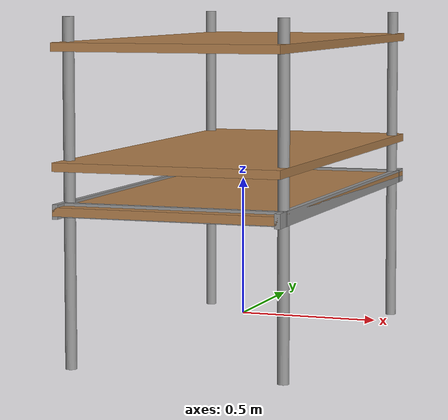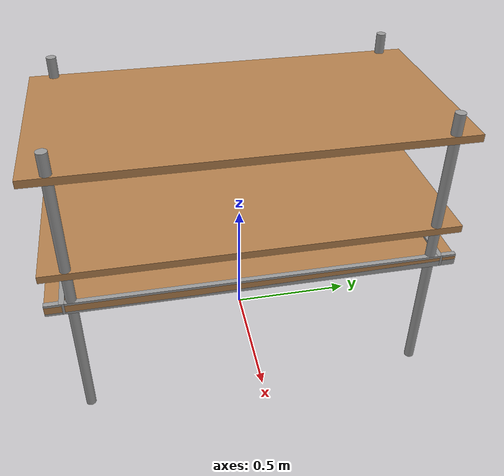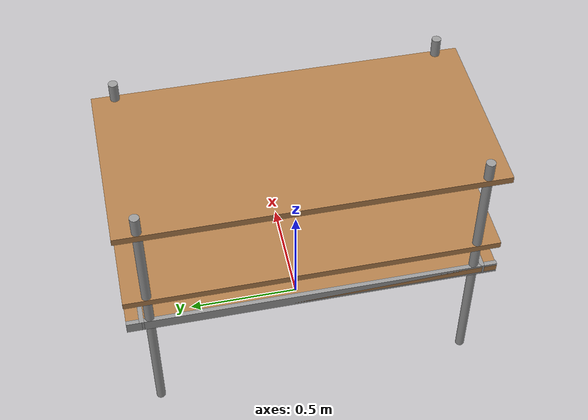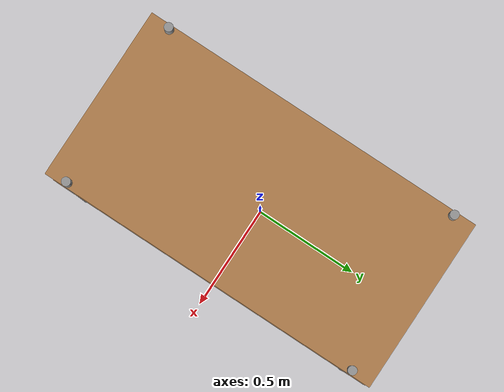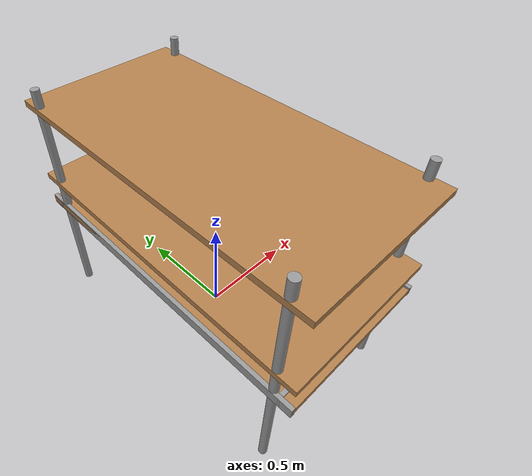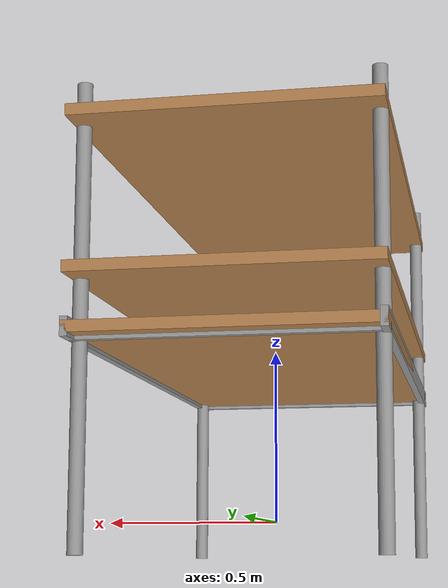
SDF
<?xml version='1.0'?>
<sdf version='1.7'>
  <model name='warehouse_pallet'>
    <link name='warehouse_pallet::link'>
      <pose>0 0 -0 0 -0 1.57</pose>
      <self_collide>0</self_collide>
      <inertial>
        <pose>0 0 0 0 -0 0</pose>
        <inertia>
          <ixx>0.0267042</ixx>
          <ixy>0</ixy>
          <ixz>0</ixz>
          <iyy>0.0937875</iyy>
          <iyz>0</iyz>
          <izz>0.120417</izz>
        </inertia>
        <mass>0.1</mass>
      </inertial>
      <enable_wind>0</enable_wind>
      <kinematic>0</kinematic>
      <gravity>1</gravity>
      <visual name='holding1_visual'>
        <pose>0 0.39 0.45 0 -0 0</pose>
        <geometry>
          <box>
            <size>1.6 0.02 0.05</size>
          </box>
        </geometry>
        <material>
          <script>
            <uri>file://media/materials/scripts/gazebo.material</uri>
            <name>Gazebo/Grey</name>
          </script>
          <shader type='pixel'>
            <normal_map>__default__</normal_map>
          </shader>
          <ambient>0.3 0.3 0.3 1</ambient>
          <diffuse>0.7 0.7 0.7 1</diffuse>
          <specular>0.01 0.01 0.01 1</specular>
          <emissive>0 0 0 1</emissive>
        </material>
        <transparency>0</transparency>
        <cast_shadows>1</cast_shadows>
      </visual>
      <visual name='front_left_leg_visual'>
        <pose>0.70 0.38 0.5 0 -0 0</pose>
        <geometry>
          <cylinder>
            <radius>0.02</radius>
            <length>1.2</length>
          </cylinder>
        </geometry>
        <material>
          <script>
            <uri>file://media/materials/scripts/gazebo.material</uri>
            <name>Gazebo/Grey</name>
          </script>
          <shader type='pixel'>
            <normal_map>__default__</normal_map>
          </shader>
          <ambient>0.3 0.3 0.3 1</ambient>
          <diffuse>0.7 0.7 0.7 1</diffuse>
          <specular>0.01 0.01 0.01 1</specular>
          <emissive>0 0 0 1</emissive>
        </material>
        <transparency>0</transparency>
        <cast_shadows>1</cast_shadows>
      </visual>
      <visual name='front_right_leg_visual'>
        <pose>0.70 -0.38 0.5 0 -0 0</pose>
        <geometry>
          <cylinder>
            <radius>0.02</radius>
            <length>1.2</length>
          </cylinder>
        </geometry>
        <material>
          <script>
            <uri>file://media/materials/scripts/gazebo.material</uri>
            <name>Gazebo/Grey</name>
          </script>
          <shader type='pixel'>
            <normal_map>__default__</normal_map>
          </shader>
          <ambient>0.3 0.3 0.3 1</ambient>
          <diffuse>0.7 0.7 0.7 1</diffuse>
          <specular>0.01 0.01 0.01 1</specular>
          <emissive>0 0 0 1</emissive>
        </material>
        <transparency>0</transparency>
        <cast_shadows>1</cast_shadows>
      </visual>
      <visual name='back_right_leg_visual'>
        <pose>-0.70 -0.38 0.5 0 -0 0</pose>
        <geometry>
          <cylinder>
            <radius>0.02</radius>
            <length>1.2</length>
          </cylinder>
        </geometry>
        <material>
          <script>
            <uri>file://media/materials/scripts/gazebo.material</uri>
            <name>Gazebo/Grey</name>
          </script>
          <shader type='pixel'>
            <normal_map>__default__</normal_map>
          </shader>
          <ambient>0.3 0.3 0.3 1</ambient>
          <diffuse>0.7 0.7 0.7 1</diffuse>
          <specular>0.01 0.01 0.01 1</specular>
          <emissive>0 0 0 1</emissive>
        </material>
        <transparency>0</transparency>
        <cast_shadows>1</cast_shadows>
      </visual>
      <visual name='back_left_leg_visual'>
        <pose>-0.70 0.38 0.5 0 -0 0</pose>
        <geometry>
          <cylinder>
            <radius>0.02</radius>
            <length>1.2</length>
          </cylinder>
        </geometry>
        <material>
          <script>
            <uri>file://media/materials/scripts/gazebo.material</uri>
            <name>Gazebo/Grey</name>
          </script>
          <shader type='pixel'>
            <normal_map>__default__</normal_map>
          </shader>
          <ambient>0.3 0.3 0.3 1</ambient>
          <diffuse>0.7 0.7 0.7 1</diffuse>
          <specular>0.01 0.01 0.01 1</specular>
          <emissive>0 0 0 1</emissive>
        </material>
        <transparency>0</transparency>
        <cast_shadows>1</cast_shadows>
      </visual>
      <visual name='visual1'>
        <pose>0 0 0.45 0 -0 0</pose>
        <geometry>
          <box>
            <size>1.6 0.8 0.03</size>
          </box>
        </geometry>
        <material>
          <script>
            <uri>file://media/materials/scripts/gazebo.material</uri>
            <name>Gazebo/Wood</name>
          </script>
          <shader type='pixel'>
            <normal_map>__default__</normal_map>
          </shader>
          <ambient>1 1 1 1</ambient>
          <diffuse>1 1 1 1</diffuse>
          <specular>0.2 0.2 0.2 1</specular>
          <emissive>0 0 0 1</emissive>
        </material>
        <transparency>0</transparency>
        <cast_shadows>1</cast_shadows>
      </visual>
      <visual name='holding2_visual'>
        <pose>0 -0.39 0.45 0 -0 0</pose>
        <geometry>
          <box>
            <size>1.6 0.02 0.05</size>
          </box>
        </geometry>
        <material>
          <script>
            <uri>file://media/materials/scripts/gazebo.material</uri>
            <name>Gazebo/Grey</name>
          </script>
          <shader type='pixel'>
            <normal_map>__default__</normal_map>
          </shader>
          <ambient>0.3 0.3 0.3 1</ambient>
          <diffuse>0.7 0.7 0.7 1</diffuse>
          <specular>0.01 0.01 0.01 1</specular>
          <emissive>0 0 0 1</emissive>
        </material>
        <transparency>0</transparency>
        <cast_shadows>1</cast_shadows>
      </visual>
      <visual name='holding3_visual'>
        <pose>0.735 0 0.45 0 -0 1.57</pose>
        <geometry>
          <box>
            <size>0.8 0.02 0.05</size>
          </box>
        </geometry>
        <material>
          <script>
            <uri>file://media/materials/scripts/gazebo.material</uri>
            <name>Gazebo/Grey</name>
          </script>
          <shader type='pixel'>
            <normal_map>__default__</normal_map>
          </shader>
          <ambient>0.3 0.3 0.3 1</ambient>
          <diffuse>0.7 0.7 0.7 1</diffuse>
          <specular>0.01 0.01 0.01 1</specular>
          <emissive>0 0 0 1</emissive>
        </material>
        <transparency>0</transparency>
        <cast_shadows>1</cast_shadows>
      </visual>
      <visual name='holding4_visual'>
        <pose>-0.735 0 0.45 0 -0 1.57</pose>
        <geometry>
          <box>
            <size>0.8 0.02 0.05</size>
          </box>
        </geometry>
        <material>
          <script>
            <uri>file://media/materials/scripts/gazebo.material</uri>
            <name>Gazebo/Grey</name>
          </script>
          <shader type='pixel'>
            <normal_map>__default__</normal_map>
          </shader>
          <ambient>0.3 0.3 0.3 1</ambient>
          <diffuse>0.7 0.7 0.7 1</diffuse>
          <specular>0.01 0.01 0.01 1</specular>
          <emissive>0 0 0 1</emissive>
        </material>
        <transparency>0</transparency>
        <cast_shadows>1</cast_shadows>
      </visual>
      <visual name='visual2'>
        <pose>0 0 0.6 0 -0 0</pose>
        <geometry>
          <box>
            <size>1.6 0.8 0.03</size>
          </box>
        </geometry>
        <material>
          <script>
            <uri>file://media/materials/scripts/gazebo.material</uri>
            <name>Gazebo/Wood</name>
          </script>
          <shader type='pixel'>
            <normal_map>__default__</normal_map>
          </shader>
          <ambient>1 1 1 1</ambient>
          <diffuse>1 1 1 1</diffuse>
          <specular>0.2 0.2 0.2 1</specular>
          <emissive>0 0 0 1</emissive>
        </material>
        <transparency>0</transparency>
        <cast_shadows>1</cast_shadows>
      </visual>
      <visual name='visual3'>
        <pose>0 0 1 0 -0 0</pose>
        <geometry>
          <box>
            <size>1.6 0.8 0.03</size>
          </box>
        </geometry>
        <material>
          <script>
            <uri>file://media/materials/scripts/gazebo.material</uri>
            <name>Gazebo/Wood</name>
          </script>
          <shader type='pixel'>
            <normal_map>__default__</normal_map>
          </shader>
          <ambient>1 1 1 1</ambient>
          <diffuse>1 1 1 1</diffuse>
          <specular>0.2 0.2 0.2 1</specular>
          <emissive>0 0 0 1</emissive>
        </material>
        <transparency>0</transparency>
        <cast_shadows>1</cast_shadows>
      </visual>
      <collision name='surface1_collision'>
        <laser_retro>0</laser_retro>
        <max_contacts>10</max_contacts>
        <pose>0 0 0.45 0 -0 0</pose>
        <geometry>
          <box>
            <size>1.6 0.8 0.03</size>
          </box>
        </geometry>
        <surface>
          <friction>
            <ode>
              <mu>20</mu>
              <mu2>20</mu2>
              <fdir1>0 0 0</fdir1>
              <slip1>0</slip1>
              <slip2>0</slip2>
            </ode>
            <torsional>
              <coefficient>1</coefficient>
              <patch_radius>0</patch_radius>
              <surface_radius>0</surface_radius>
              <use_patch_radius>1</use_patch_radius>
              <ode>
                <slip>0</slip>
              </ode>
            </torsional>
          </friction>
          <bounce>
            <restitution_coefficient>0</restitution_coefficient>
            <threshold>1e+06</threshold>
          </bounce>
          <contact>
            <collide_without_contact>0</collide_without_contact>
            <collide_without_contact_bitmask>1</collide_without_contact_bitmask>
            <collide_bitmask>1</collide_bitmask>
            <ode>
              <soft_cfm>0</soft_cfm>
              <soft_erp>0.2</soft_erp>
              <kp>1e+13</kp>
              <kd>1</kd>
              <max_vel>0.01</max_vel>
              <min_depth>0</min_depth>
            </ode>
            <bullet>
              <split_impulse>1</split_impulse>
              <split_impulse_penetration_threshold>-0.01</split_impulse_penetration_threshold>
              <soft_cfm>0</soft_cfm>
              <soft_erp>0.2</soft_erp>
              <kp>1e+13</kp>
              <kd>1</kd>
            </bullet>
          </contact>
        </surface>
      </collision>
      <collision name='holding1_collision'>
        <laser_retro>0</laser_retro>
        <max_contacts>10</max_contacts>
        <pose>0 0.39 0.45 0 -0 0</pose>
        <geometry>
          <box>
            <size>1.6 0.02 0.05</size>
          </box>
        </geometry>
        <surface>
          <friction>
            <ode>
              <mu>1e+09</mu>
              <mu2>1e+09</mu2>
              <fdir1>0 0 0</fdir1>
              <slip1>0</slip1>
              <slip2>0</slip2>
            </ode>
            <torsional>
              <coefficient>1</coefficient>
              <patch_radius>0</patch_radius>
              <surface_radius>0</surface_radius>
              <use_patch_radius>1</use_patch_radius>
              <ode>
                <slip>0</slip>
              </ode>
            </torsional>
          </friction>
          <bounce>
            <restitution_coefficient>0</restitution_coefficient>
            <threshold>1e+06</threshold>
          </bounce>
          <contact>
            <collide_without_contact>0</collide_without_contact>
            <collide_without_contact_bitmask>1</collide_without_contact_bitmask>
            <collide_bitmask>1</collide_bitmask>
            <ode>
              <soft_cfm>0</soft_cfm>
              <soft_erp>0.2</soft_erp>
              <kp>1e+13</kp>
              <kd>1</kd>
              <max_vel>0.01</max_vel>
              <min_depth>0</min_depth>
            </ode>
            <bullet>
              <split_impulse>1</split_impulse>
              <split_impulse_penetration_threshold>-0.01</split_impulse_penetration_threshold>
              <soft_cfm>0</soft_cfm>
              <soft_erp>0.2</soft_erp>
              <kp>1e+13</kp>
              <kd>1</kd>
            </bullet>
          </contact>
        </surface>
      </collision>
      <collision name='holding2_collision'>
        <laser_retro>0</laser_retro>
        <max_contacts>10</max_contacts>
        <pose>0 -0.39 0.45 0 -0 0</pose>
        <geometry>
          <box>
            <size>1.6 0.02 0.05</size>
          </box>
        </geometry>
        <surface>
          <friction>
            <ode>
              <mu>1e+09</mu>
              <mu2>1e+09</mu2>
              <fdir1>0 0 0</fdir1>
              <slip1>0</slip1>
              <slip2>0</slip2>
            </ode>
            <torsional>
              <coefficient>1</coefficient>
              <patch_radius>0</patch_radius>
              <surface_radius>0</surface_radius>
              <use_patch_radius>1</use_patch_radius>
              <ode>
                <slip>0</slip>
              </ode>
            </torsional>
          </friction>
          <bounce>
            <restitution_coefficient>0</restitution_coefficient>
            <threshold>1e+06</threshold>
          </bounce>
          <contact>
            <collide_without_contact>0</collide_without_contact>
            <collide_without_contact_bitmask>1</collide_without_contact_bitmask>
            <collide_bitmask>1</collide_bitmask>
            <ode>
              <soft_cfm>0</soft_cfm>
              <soft_erp>0.2</soft_erp>
              <kp>1e+13</kp>
              <kd>1</kd>
              <max_vel>0.01</max_vel>
              <min_depth>0</min_depth>
            </ode>
            <bullet>
              <split_impulse>1</split_impulse>
              <split_impulse_penetration_threshold>-0.01</split_impulse_penetration_threshold>
              <soft_cfm>0</soft_cfm>
              <soft_erp>0.2</soft_erp>
              <kp>1e+13</kp>
              <kd>1</kd>
            </bullet>
          </contact>
        </surface>
      </collision>
      <collision name='holding3_collision'>
        <laser_retro>0</laser_retro>
        <max_contacts>10</max_contacts>
        <pose>0.735 0 0.45 0 -0 1.57</pose>
        <geometry>
          <box>
            <size>0.8 0.02 0.05</size>
          </box>
        </geometry>
        <surface>
          <friction>
            <ode>
              <mu>1e+09</mu>
              <mu2>1e+09</mu2>
              <fdir1>0 0 0</fdir1>
              <slip1>0</slip1>
              <slip2>0</slip2>
            </ode>
            <torsional>
              <coefficient>1</coefficient>
              <patch_radius>0</patch_radius>
              <surface_radius>0</surface_radius>
              <use_patch_radius>1</use_patch_radius>
              <ode>
                <slip>0</slip>
              </ode>
            </torsional>
          </friction>
          <bounce>
            <restitution_coefficient>0</restitution_coefficient>
            <threshold>1e+06</threshold>
          </bounce>
          <contact>
            <collide_without_contact>0</collide_without_contact>
            <collide_without_contact_bitmask>1</collide_without_contact_bitmask>
            <collide_bitmask>1</collide_bitmask>
            <ode>
              <soft_cfm>0</soft_cfm>
              <soft_erp>0.2</soft_erp>
              <kp>1e+13</kp>
              <kd>1</kd>
              <max_vel>0.01</max_vel>
              <min_depth>0</min_depth>
            </ode>
            <bullet>
              <split_impulse>1</split_impulse>
              <split_impulse_penetration_threshold>-0.01</split_impulse_penetration_threshold>
              <soft_cfm>0</soft_cfm>
              <soft_erp>0.2</soft_erp>
              <kp>1e+13</kp>
              <kd>1</kd>
            </bullet>
          </contact>
        </surface>
      </collision>
      <collision name='holding4_collision'>
        <laser_retro>0</laser_retro>
        <max_contacts>10</max_contacts>
        <pose>-0.735 0 0.45 0 -0 1.57</pose>
        <geometry>
          <box>
            <size>0.8 0.02 0.05</size>
          </box>
        </geometry>
        <surface>
          <friction>
            <ode>
              <mu>1e+09</mu>
              <mu2>1e+09</mu2>
              <fdir1>0 0 0</fdir1>
              <slip1>0</slip1>
              <slip2>0</slip2>
            </ode>
            <torsional>
              <coefficient>1</coefficient>
              <patch_radius>0</patch_radius>
              <surface_radius>0</surface_radius>
              <use_patch_radius>1</use_patch_radius>
              <ode>
                <slip>0</slip>
              </ode>
            </torsional>
          </friction>
          <bounce>
            <restitution_coefficient>0</restitution_coefficient>
            <threshold>1e+06</threshold>
          </bounce>
          <contact>
            <collide_without_contact>0</collide_without_contact>
            <collide_without_contact_bitmask>1</collide_without_contact_bitmask>
            <collide_bitmask>1</collide_bitmask>
            <ode>
              <soft_cfm>0</soft_cfm>
              <soft_erp>0.2</soft_erp>
              <kp>1e+13</kp>
              <kd>1</kd>
              <max_vel>0.01</max_vel>
              <min_depth>0</min_depth>
            </ode>
            <bullet>
              <split_impulse>1</split_impulse>
              <split_impulse_penetration_threshold>-0.01</split_impulse_penetration_threshold>
              <soft_cfm>0</soft_cfm>
              <soft_erp>0.2</soft_erp>
              <kp>1e+13</kp>
              <kd>1</kd>
            </bullet>
          </contact>
        </surface>
      </collision>
      <collision name='surface3_collision'>
        <laser_retro>0</laser_retro>
        <max_contacts>10</max_contacts>
        <pose>0 0 1 0 -0 0</pose>
        <geometry>
          <box>
            <size>1.6 0.8 0.03</size>
          </box>
        </geometry>
        <surface>
          <friction>
            <ode>
              <mu>2.5</mu>
              <mu2>2.5</mu2>
              <fdir1>0 0 0</fdir1>
              <slip1>0</slip1>
              <slip2>0</slip2>
            </ode>
            <torsional>
              <coefficient>1</coefficient>
              <patch_radius>0</patch_radius>
              <surface_radius>0</surface_radius>
              <use_patch_radius>1</use_patch_radius>
              <ode>
                <slip>0</slip>
              </ode>
            </torsional>
          </friction>
          <bounce>
            <restitution_coefficient>0</restitution_coefficient>
            <threshold>1e+06</threshold>
          </bounce>
          <contact>
            <collide_without_contact>0</collide_without_contact>
            <collide_without_contact_bitmask>1</collide_without_contact_bitmask>
            <collide_bitmask>1</collide_bitmask>
            <ode>
              <soft_cfm>0</soft_cfm>
              <soft_erp>0.2</soft_erp>
              <kp>1e+13</kp>
              <kd>1</kd>
              <max_vel>0.01</max_vel>
              <min_depth>0</min_depth>
            </ode>
            <bullet>
              <split_impulse>1</split_impulse>
              <split_impulse_penetration_threshold>-0.01</split_impulse_penetration_threshold>
              <soft_cfm>0</soft_cfm>
              <soft_erp>0.2</soft_erp>
              <kp>1e+13</kp>
              <kd>1</kd>
            </bullet>
          </contact>
        </surface>
      </collision>
      <collision name='surface2_collision'>
        <laser_retro>0</laser_retro>
        <max_contacts>10</max_contacts>
        <pose>0 0 0.6 0 -0 0</pose>
        <geometry>
          <box>
            <size>1.6 0.8 0.03</size>
          </box>
        </geometry>
        <surface>
          <friction>
            <ode>
              <mu>2.5</mu>
              <mu2>2.5</mu2>
              <fdir1>0 0 0</fdir1>
              <slip1>0</slip1>
              <slip2>0</slip2>
            </ode>
            <torsional>
              <coefficient>1</coefficient>
              <patch_radius>0</patch_radius>
              <surface_radius>0</surface_radius>
              <use_patch_radius>1</use_patch_radius>
              <ode>
                <slip>0</slip>
              </ode>
            </torsional>
          </friction>
          <bounce>
            <restitution_coefficient>0</restitution_coefficient>
            <threshold>1e+06</threshold>
          </bounce>
          <contact>
            <collide_without_contact>0</collide_without_contact>
            <collide_without_contact_bitmask>1</collide_without_contact_bitmask>
            <collide_bitmask>1</collide_bitmask>
            <ode>
              <soft_cfm>0</soft_cfm>
              <soft_erp>0.2</soft_erp>
              <kp>1e+13</kp>
              <kd>1</kd>
              <max_vel>0.01</max_vel>
              <min_depth>0</min_depth>
            </ode>
            <bullet>
              <split_impulse>1</split_impulse>
              <split_impulse_penetration_threshold>-0.01</split_impulse_penetration_threshold>
              <soft_cfm>0</soft_cfm>
              <soft_erp>0.2</soft_erp>
              <kp>1e+13</kp>
              <kd>1</kd>
            </bullet>
          </contact>
        </surface>
      </collision>
      <collision name='front_right_leg_collision'>
        <laser_retro>0</laser_retro>
        <max_contacts>10</max_contacts>
        <pose>0.70 -0.38 0.5 0 -0 0</pose>
        <geometry>
          <cylinder>
            <radius>0.02</radius>
            <length>1</length>
          </cylinder>
        </geometry>
        <surface>
          <friction>
            <ode>
              <mu>0.1</mu>
              <mu2>0.1</mu2>
              <fdir1>0 0 0</fdir1>
              <slip1>0</slip1>
              <slip2>0</slip2>
            </ode>
            <torsional>
              <coefficient>1</coefficient>
              <patch_radius>0</patch_radius>
              <surface_radius>0</surface_radius>
              <use_patch_radius>1</use_patch_radius>
              <ode>
                <slip>0</slip>
              </ode>
            </torsional>
          </friction>
          <bounce>
            <restitution_coefficient>0</restitution_coefficient>
            <threshold>1e+06</threshold>
          </bounce>
          <contact>
            <collide_without_contact>0</collide_without_contact>
            <collide_without_contact_bitmask>1</collide_without_contact_bitmask>
            <collide_bitmask>1</collide_bitmask>
            <ode>
              <soft_cfm>0</soft_cfm>
              <soft_erp>0.2</soft_erp>
              <kp>1e+13</kp>
              <kd>1</kd>
              <max_vel>0.01</max_vel>
              <min_depth>0</min_depth>
            </ode>
            <bullet>
              <split_impulse>1</split_impulse>
              <split_impulse_penetration_threshold>-0.01</split_impulse_penetration_threshold>
              <soft_cfm>0</soft_cfm>
              <soft_erp>0.2</soft_erp>
              <kp>1e+13</kp>
              <kd>1</kd>
            </bullet>
          </contact>
        </surface>
      </collision>
      <collision name='back_right_leg_collision'>
        <laser_retro>0</laser_retro>
        <max_contacts>10</max_contacts>
        <pose>-0.70 -0.38 0.5 0 -0 0</pose>
        <geometry>
          <cylinder>
            <radius>0.02</radius>
            <length>1.2</length>
          </cylinder>
        </geometry>
        <surface>
          <friction>
            <ode>
              <mu>0.1</mu>
              <mu2>0.1</mu2>
              <fdir1>0 0 0</fdir1>
              <slip1>0</slip1>
              <slip2>0</slip2>
            </ode>
            <torsional>
              <coefficient>1</coefficient>
              <patch_radius>0</patch_radius>
              <surface_radius>0</surface_radius>
              <use_patch_radius>1</use_patch_radius>
              <ode>
                <slip>0</slip>
              </ode>
            </torsional>
          </friction>
          <bounce>
            <restitution_coefficient>0</restitution_coefficient>
            <threshold>1e+06</threshold>
          </bounce>
          <contact>
            <collide_without_contact>0</collide_without_contact>
            <collide_without_contact_bitmask>1</collide_without_contact_bitmask>
            <collide_bitmask>1</collide_bitmask>
            <ode>
              <soft_cfm>0</soft_cfm>
              <soft_erp>0.2</soft_erp>
              <kp>1e+13</kp>
              <kd>1</kd>
              <max_vel>0.01</max_vel>
              <min_depth>0</min_depth>
            </ode>
            <bullet>
              <split_impulse>1</split_impulse>
              <split_impulse_penetration_threshold>-0.01</split_impulse_penetration_threshold>
              <soft_cfm>0</soft_cfm>
              <soft_erp>0.2</soft_erp>
              <kp>1e+13</kp>
              <kd>1</kd>
            </bullet>
          </contact>
        </surface>
      </collision>
      <collision name='front_left_leg_collision'>
        <laser_retro>0</laser_retro>
        <max_contacts>10</max_contacts>
        <pose>0.70 0.38 0.5 0 -0 0</pose>
        <geometry>
          <cylinder>
            <radius>0.02</radius>
            <length>1.2</length>
          </cylinder>
        </geometry>
        <surface>
          <friction>
            <ode>
              <mu>0.1</mu>
              <mu2>0.1</mu2>
              <fdir1>0 0 0</fdir1>
              <slip1>0</slip1>
              <slip2>0</slip2>
            </ode>
            <torsional>
              <coefficient>1</coefficient>
              <patch_radius>0</patch_radius>
              <surface_radius>0</surface_radius>
              <use_patch_radius>1</use_patch_radius>
              <ode>
                <slip>0</slip>
              </ode>
            </torsional>
          </friction>
          <bounce>
            <restitution_coefficient>0</restitution_coefficient>
            <threshold>1e+06</threshold>
          </bounce>
          <contact>
            <collide_without_contact>0</collide_without_contact>
            <collide_without_contact_bitmask>1</collide_without_contact_bitmask>
            <collide_bitmask>1</collide_bitmask>
            <ode>
              <soft_cfm>0</soft_cfm>
              <soft_erp>0.2</soft_erp>
              <kp>1e+13</kp>
              <kd>1</kd>
              <max_vel>0.01</max_vel>
              <min_depth>0</min_depth>
            </ode>
            <bullet>
              <split_impulse>1</split_impulse>
              <split_impulse_penetration_threshold>-0.01</split_impulse_penetration_threshold>
              <soft_cfm>0</soft_cfm>
              <soft_erp>0.2</soft_erp>
              <kp>1e+13</kp>
              <kd>1</kd>
            </bullet>
          </contact>
        </surface>
      </collision>
      <collision name='back_left_leg_collision'>
        <laser_retro>0</laser_retro>
        <max_contacts>10</max_contacts>
        <pose>-0.70 0.38 0.5 0 -0 0</pose>
        <geometry>
          <cylinder>
            <radius>0.02</radius>
            <length>1.2</length>
          </cylinder>
        </geometry>
        <surface>
          <friction>
            <ode>
              <mu>0.1</mu>
              <mu2>0.1</mu2>
              <fdir1>0 0 0</fdir1>
              <slip1>0</slip1>
              <slip2>0</slip2>
            </ode>
            <torsional>
              <coefficient>1</coefficient>
              <patch_radius>0</patch_radius>
              <surface_radius>0</surface_radius>
              <use_patch_radius>1</use_patch_radius>
              <ode>
                <slip>0</slip>
              </ode>
            </torsional>
          </friction>
          <bounce>
            <restitution_coefficient>0</restitution_coefficient>
            <threshold>1e+06</threshold>
          </bounce>
          <contact>
            <collide_without_contact>0</collide_without_contact>
            <collide_without_contact_bitmask>1</collide_without_contact_bitmask>
            <collide_bitmask>1</collide_bitmask>
            <ode>
              <soft_cfm>0</soft_cfm>
              <soft_erp>0.2</soft_erp>
              <kp>1e+13</kp>
              <kd>1</kd>
              <max_vel>0.01</max_vel>
              <min_depth>0</min_depth>
            </ode>
            <bullet>
              <split_impulse>1</split_impulse>
              <split_impulse_penetration_threshold>-0.01</split_impulse_penetration_threshold>
              <soft_cfm>0</soft_cfm>
              <soft_erp>0.2</soft_erp>
              <kp>1e+13</kp>
              <kd>1</kd>
            </bullet>
          </contact>
        </surface>
      </collision>
    </link>
    <static>1</static>
    <allow_auto_disable>1</allow_auto_disable>
  </model>
</sdf>
